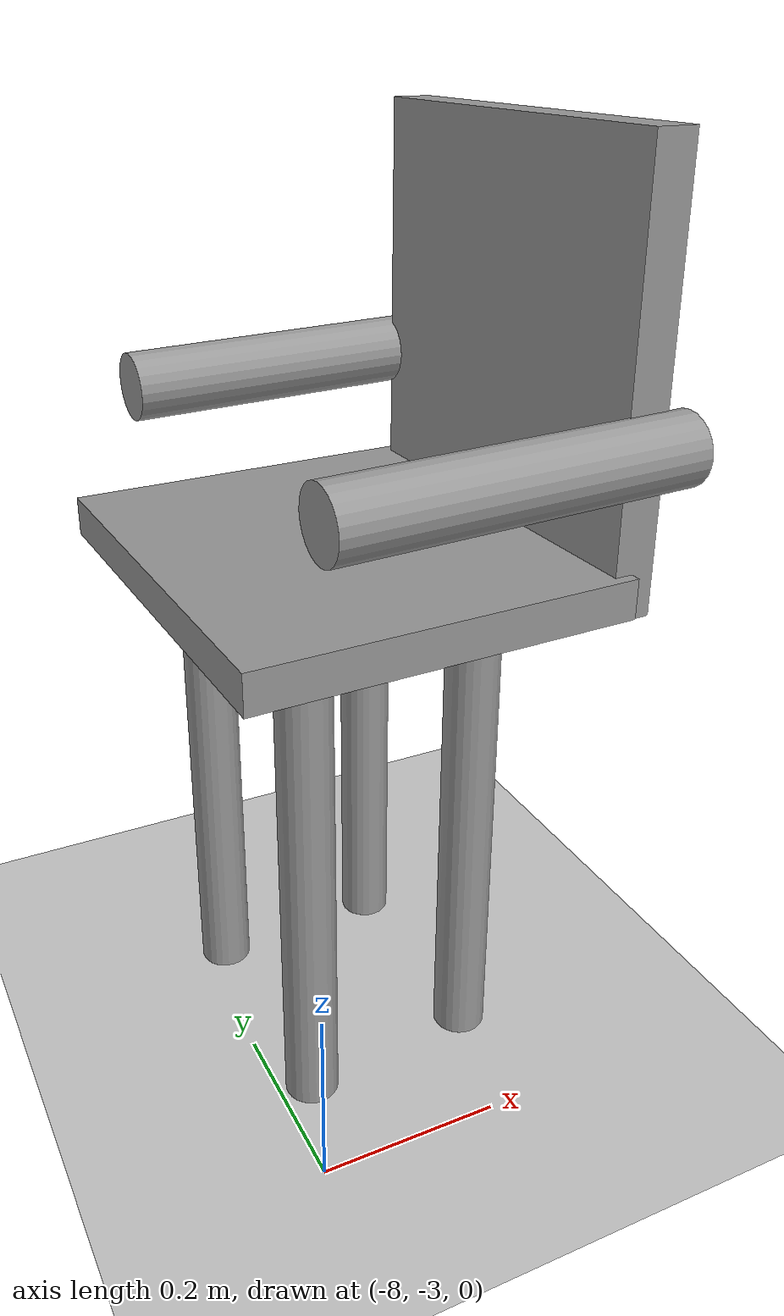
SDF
<sdf version="1.6">
 <world name="default">
  <model name="ground_plane">
   <static>1</static>
   <link name="link">
    <collision name="collision">
     <geometry><plane><normal>0 0 1</normal><size>100 100</size></plane></geometry>
     <surface>
      <contact><collide_bitmask>65535</collide_bitmask></contact>
      <friction><ode><mu>100</mu><mu2>50</mu2></ode></friction>
     </surface>
    </collision>
    <visual name="visual">
     <cast_shadows>0</cast_shadows>
     <geometry><plane><normal>0 0 1</normal><size>100 100</size></plane></geometry>
     <material>
      <script><uri>file://media/materials/scripts/gazebo.material</uri><name>Gazebo/Grey</name></script>
     </material>
    </visual>
   </link>
  </model>
  <model name="chair_clone_1_clone_0">
   <link name="link_4">
    <inertial>
     <mass>0.00194051</mass>
     <inertia>
      <ixx>5.14044e-05</ixx>
      <ixy>0</ixy>
      <ixz>0</ixz>
      <iyy>5.14044e-05</iyy>
      <iyz>0</iyz>
      <izz>8.34973e-07</izz>
     </inertia>
    </inertial>
    <pose>-0.140129 -0.127166 -0.209129 0 -0 0</pose>
    <visual name="visual">
     <geometry><cylinder><radius>0.0293355</radius><length>0.561516</length></cylinder></geometry>
     <material>
      <lighting>1</lighting>
      <script><uri>file://media/materials/scripts/gazebo.material</uri><name>Gazebo/Grey</name></script>
      <emissive>0 0 0 1</emissive>
     </material>
    </visual>
    <collision name="collision">
     <geometry><cylinder><radius>0.029336</radius><length>0.561516</length></cylinder></geometry>
     <surface>
      <friction>
       <ode><mu>1</mu><mu2>1</mu2><fdir1>0 0 0</fdir1><slip1>0</slip1><slip2>0</slip2></ode>
       <torsional>
        <coefficient>1</coefficient>
        <patch_radius>0</patch_radius>
        <surface_radius>0</surface_radius>
        <use_patch_radius>1</use_patch_radius>
        <ode><slip>0</slip></ode>
       </torsional>
      </friction>
      <bounce><restitution_coefficient>0</restitution_coefficient><threshold>1e+06</threshold></bounce>
      <contact>
       <collide_without_contact>0</collide_without_contact>
       <collide_without_contact_bitmask>1</collide_without_contact_bitmask>
       <collide_bitmask>1</collide_bitmask>
       <ode>
        <soft_cfm>0</soft_cfm>
        <soft_erp>0.2</soft_erp>
        <kp>1e+13</kp>
        <kd>1</kd>
        <max_vel>0.01</max_vel>
        <min_depth>0</min_depth>
       </ode>
       <bullet>
        <split_impulse>1</split_impulse>
        <split_impulse_penetration_threshold>-0.01</split_impulse_penetration_threshold>
        <soft_cfm>0</soft_cfm>
        <soft_erp>0.2</soft_erp>
        <kp>1e+13</kp>
        <kd>1</kd>
       </bullet>
      </contact>
     </surface>
    </collision>
   </link>
   <link name="link_4_clone">
    <inertial>
     <mass>0.00194051</mass>
     <inertia>
      <ixx>5.14044e-05</ixx>
      <ixy>0</ixy>
      <ixz>0</ixz>
      <iyy>5.14044e-05</iyy>
      <iyz>0</iyz>
      <izz>8.34973e-07</izz>
     </inertia>
    </inertial>
    <pose>-0.139565 0.126187 -0.209129 0 -0 0</pose>
    <visual name="visual">
     <geometry><cylinder><radius>0.0293355</radius><length>0.561516</length></cylinder></geometry>
     <material>
      <lighting>1</lighting>
      <script><uri>file://media/materials/scripts/gazebo.material</uri><name>Gazebo/Grey</name></script>
      <shader type="pixel"/>
      <emissive>0 0 0 1</emissive>
     </material>
    </visual>
    <collision name="collision">
     <geometry><cylinder><radius>0.029336</radius><length>0.561516</length></cylinder></geometry>
     <surface>
      <friction>
       <ode><mu>1</mu><mu2>1</mu2><fdir1>0 0 0</fdir1><slip1>0</slip1><slip2>0</slip2></ode>
       <torsional>
        <coefficient>1</coefficient>
        <patch_radius>0</patch_radius>
        <surface_radius>0</surface_radius>
        <use_patch_radius>1</use_patch_radius>
        <ode><slip>0</slip></ode>
       </torsional>
      </friction>
      <bounce><restitution_coefficient>0</restitution_coefficient><threshold>1e+06</threshold></bounce>
      <contact>
       <collide_without_contact>0</collide_without_contact>
       <collide_without_contact_bitmask>1</collide_without_contact_bitmask>
       <collide_bitmask>1</collide_bitmask>
       <ode>
        <soft_cfm>0</soft_cfm>
        <soft_erp>0.2</soft_erp>
        <kp>1e+13</kp>
        <kd>1</kd>
        <max_vel>0.01</max_vel>
        <min_depth>0</min_depth>
       </ode>
       <bullet>
        <split_impulse>1</split_impulse>
        <split_impulse_penetration_threshold>-0.01</split_impulse_penetration_threshold>
        <soft_cfm>0</soft_cfm>
        <soft_erp>0.2</soft_erp>
        <kp>1e+13</kp>
        <kd>1</kd>
       </bullet>
      </contact>
     </surface>
    </collision>
   </link>
   <link name="link_4_clone_0">
    <inertial>
     <mass>0.00194051</mass>
     <inertia>
      <ixx>5.14044e-05</ixx>
      <ixy>0</ixy>
      <ixz>0</ixz>
      <iyy>5.14044e-05</iyy>
      <iyz>0</iyz>
      <izz>8.34973e-07</izz>
     </inertia>
    </inertial>
    <pose>0.062929 0.13105 -0.209129 0 -0 0</pose>
    <visual name="visual">
     <geometry><cylinder><radius>0.0293355</radius><length>0.561516</length></cylinder></geometry>
     <material>
      <lighting>1</lighting>
      <script><uri>file://media/materials/scripts/gazebo.material</uri><name>Gazebo/Grey</name></script>
      <shader type="pixel"/>
      <emissive>0 0 0 1</emissive>
     </material>
    </visual>
    <collision name="collision">
     <geometry><cylinder><radius>0.029336</radius><length>0.561516</length></cylinder></geometry>
     <surface>
      <friction>
       <ode><mu>1</mu><mu2>1</mu2><fdir1>0 0 0</fdir1><slip1>0</slip1><slip2>0</slip2></ode>
       <torsional>
        <coefficient>1</coefficient>
        <patch_radius>0</patch_radius>
        <surface_radius>0</surface_radius>
        <use_patch_radius>1</use_patch_radius>
        <ode><slip>0</slip></ode>
       </torsional>
      </friction>
      <bounce><restitution_coefficient>0</restitution_coefficient><threshold>1e+06</threshold></bounce>
      <contact>
       <collide_without_contact>0</collide_without_contact>
       <collide_without_contact_bitmask>1</collide_without_contact_bitmask>
       <collide_bitmask>1</collide_bitmask>
       <ode>
        <soft_cfm>0</soft_cfm>
        <soft_erp>0.2</soft_erp>
        <kp>1e+13</kp>
        <kd>1</kd>
        <max_vel>0.01</max_vel>
        <min_depth>0</min_depth>
       </ode>
       <bullet>
        <split_impulse>1</split_impulse>
        <split_impulse_penetration_threshold>-0.01</split_impulse_penetration_threshold>
        <soft_cfm>0</soft_cfm>
        <soft_erp>0.2</soft_erp>
        <kp>1e+13</kp>
        <kd>1</kd>
       </bullet>
      </contact>
     </surface>
    </collision>
   </link>
   <link name="link_4_clone_1">
    <inertial>
     <mass>0.00194051</mass>
     <inertia>
      <ixx>5.14044e-05</ixx>
      <ixy>0</ixy>
      <ixz>0</ixz>
      <iyy>5.14044e-05</iyy>
      <iyz>0</iyz>
      <izz>8.34973e-07</izz>
     </inertia>
    </inertial>
    <pose>0.061641 -0.111934 -0.209129 0 -0 0</pose>
    <visual name="visual">
     <geometry><cylinder><radius>0.0293355</radius><length>0.561516</length></cylinder></geometry>
     <material>
      <lighting>1</lighting>
      <script><uri>file://media/materials/scripts/gazebo.material</uri><name>Gazebo/Grey</name></script>
      <shader type="pixel"/>
      <emissive>0 0 0 1</emissive>
     </material>
    </visual>
    <collision name="collision">
     <geometry><cylinder><radius>0.029336</radius><length>0.561516</length></cylinder></geometry>
     <surface>
      <friction>
       <ode><mu>1</mu><mu2>1</mu2><fdir1>0 0 0</fdir1><slip1>0</slip1><slip2>0</slip2></ode>
       <torsional>
        <coefficient>1</coefficient>
        <patch_radius>0</patch_radius>
        <surface_radius>0</surface_radius>
        <use_patch_radius>1</use_patch_radius>
        <ode><slip>0</slip></ode>
       </torsional>
      </friction>
      <bounce><restitution_coefficient>0</restitution_coefficient><threshold>1e+06</threshold></bounce>
      <contact>
       <collide_without_contact>0</collide_without_contact>
       <collide_without_contact_bitmask>1</collide_without_contact_bitmask>
       <collide_bitmask>1</collide_bitmask>
       <ode>
        <soft_cfm>0</soft_cfm>
        <soft_erp>0.2</soft_erp>
        <kp>1e+13</kp>
        <kd>1</kd>
        <max_vel>0.01</max_vel>
        <min_depth>0</min_depth>
       </ode>
       <bullet>
        <split_impulse>1</split_impulse>
        <split_impulse_penetration_threshold>-0.01</split_impulse_penetration_threshold>
        <soft_cfm>0</soft_cfm>
        <soft_erp>0.2</soft_erp>
        <kp>1e+13</kp>
        <kd>1</kd>
       </bullet>
      </contact>
     </surface>
    </collision>
   </link>
   <link name="link_5">
    <inertial>
     <mass>0.00816884</mass>
     <inertia>
      <ixx>0.00015002</ixx>
      <ixy>0</ixy>
      <ixz>0</ixz>
      <iyy>0.000115328</iyy>
      <iyz>0</iyz>
      <izz>0.000262862</izz>
     </inertia>
    </inertial>
    <pose>-0.041662 -0.005028 0.089077 0 -0 0</pose>
    <visual name="visual">
     <geometry><box><size>0.409378 0.467496 0.042729</size></box></geometry>
     <material>
      <lighting>1</lighting>
      <script><uri>file://media/materials/scripts/gazebo.material</uri><name>Gazebo/Grey</name></script>
      <emissive>0 0 0 1</emissive>
     </material>
    </visual>
    <collision name="collision">
     <geometry><box><size>0.409378 0.467496 0.042729</size></box></geometry>
     <surface>
      <friction>
       <ode><mu>1</mu><mu2>1</mu2><fdir1>0 0 0</fdir1><slip1>0</slip1><slip2>0</slip2></ode>
       <torsional>
        <coefficient>1</coefficient>
        <patch_radius>0</patch_radius>
        <surface_radius>0</surface_radius>
        <use_patch_radius>1</use_patch_radius>
        <ode><slip>0</slip></ode>
       </torsional>
      </friction>
      <bounce><restitution_coefficient>0</restitution_coefficient><threshold>1e+06</threshold></bounce>
      <contact>
       <collide_without_contact>0</collide_without_contact>
       <collide_without_contact_bitmask>1</collide_without_contact_bitmask>
       <collide_bitmask>1</collide_bitmask>
       <ode>
        <soft_cfm>0</soft_cfm>
        <soft_erp>0.2</soft_erp>
        <kp>1e+13</kp>
        <kd>1</kd>
        <max_vel>0.01</max_vel>
        <min_depth>0</min_depth>
       </ode>
       <bullet>
        <split_impulse>1</split_impulse>
        <split_impulse_penetration_threshold>-0.01</split_impulse_penetration_threshold>
        <soft_cfm>0</soft_cfm>
        <soft_erp>0.2</soft_erp>
        <kp>1e+13</kp>
        <kd>1</kd>
       </bullet>
      </contact>
     </surface>
    </collision>
   </link>
   <link name="link_6">
    <inertial>
     <mass>0.00855687</mass>
     <inertia>
      <ixx>0.000285159</ixx>
      <ixy>0</ixy>
      <ixz>0</ixz>
      <iyy>0.000146983</iyy>
      <iyz>0</iyz>
      <izz>0.000140925</izz>
     </inertia>
    </inertial>
    <pose>0.165697 -0.006458 0.287866 0 -0 0</pose>
    <visual name="visual">
     <geometry><box><size>0.0439 0.442383 0.451884</size></box></geometry>
     <material>
      <lighting>1</lighting>
      <script><uri>file://media/materials/scripts/gazebo.material</uri><name>Gazebo/Grey</name></script>
      <emissive>0 0 0 1</emissive>
     </material>
    </visual>
    <collision name="collision">
     <geometry><box><size>0.0439 0.442383 0.451884</size></box></geometry>
     <surface>
      <friction>
       <ode><mu>1</mu><mu2>1</mu2><fdir1>0 0 0</fdir1><slip1>0</slip1><slip2>0</slip2></ode>
       <torsional>
        <coefficient>1</coefficient>
        <patch_radius>0</patch_radius>
        <surface_radius>0</surface_radius>
        <use_patch_radius>1</use_patch_radius>
        <ode><slip>0</slip></ode>
       </torsional>
      </friction>
      <bounce><restitution_coefficient>0</restitution_coefficient><threshold>1e+06</threshold></bounce>
      <contact>
       <collide_without_contact>0</collide_without_contact>
       <collide_without_contact_bitmask>1</collide_without_contact_bitmask>
       <collide_bitmask>1</collide_bitmask>
       <ode>
        <soft_cfm>0</soft_cfm>
        <soft_erp>0.2</soft_erp>
        <kp>1e+13</kp>
        <kd>1</kd>
        <max_vel>0.01</max_vel>
        <min_depth>0</min_depth>
       </ode>
       <bullet>
        <split_impulse>1</split_impulse>
        <split_impulse_penetration_threshold>-0.01</split_impulse_penetration_threshold>
        <soft_cfm>0</soft_cfm>
        <soft_erp>0.2</soft_erp>
        <kp>1e+13</kp>
        <kd>1</kd>
       </bullet>
      </contact>
     </surface>
    </collision>
   </link>
   <link name="link_7">
    <inertial>
     <mass>0.00209129</mass>
     <inertia>
      <ixx>2.57536e-05</ixx>
      <ixy>0</ixy>
      <ixz>0</ixz>
      <iyy>2.57536e-05</iyy>
      <iyz>0</iyz>
      <izz>1.44551e-06</izz>
     </inertia>
    </inertial>
    <pose>0.0147 0.228665 0.230372 0 1.55081 0</pose>
    <visual name="visual">
     <geometry><cylinder><radius>0.0371808</radius><length>0.378984</length></cylinder></geometry>
     <material>
      <lighting>1</lighting>
      <script><uri>file://media/materials/scripts/gazebo.material</uri><name>Gazebo/Grey</name></script>
      <emissive>0 0 0 1</emissive>
     </material>
    </visual>
    <collision name="collision">
     <geometry><cylinder><radius>0.037181</radius><length>0.378984</length></cylinder></geometry>
     <surface>
      <friction>
       <ode><mu>1</mu><mu2>1</mu2><fdir1>0 0 0</fdir1><slip1>0</slip1><slip2>0</slip2></ode>
       <torsional>
        <coefficient>1</coefficient>
        <patch_radius>0</patch_radius>
        <surface_radius>0</surface_radius>
        <use_patch_radius>1</use_patch_radius>
        <ode><slip>0</slip></ode>
       </torsional>
      </friction>
      <bounce><restitution_coefficient>0</restitution_coefficient><threshold>1e+06</threshold></bounce>
      <contact>
       <collide_without_contact>0</collide_without_contact>
       <collide_without_contact_bitmask>1</collide_without_contact_bitmask>
       <collide_bitmask>1</collide_bitmask>
       <ode>
        <soft_cfm>0</soft_cfm>
        <soft_erp>0.2</soft_erp>
        <kp>1e+13</kp>
        <kd>1</kd>
        <max_vel>0.01</max_vel>
        <min_depth>0</min_depth>
       </ode>
       <bullet>
        <split_impulse>1</split_impulse>
        <split_impulse_penetration_threshold>-0.01</split_impulse_penetration_threshold>
        <soft_cfm>0</soft_cfm>
        <soft_erp>0.2</soft_erp>
        <kp>1e+13</kp>
        <kd>1</kd>
       </bullet>
      </contact>
     </surface>
    </collision>
   </link>
   <link name="link_7_clone">
    <inertial>
     <mass>0.00209129</mass>
     <inertia>
      <ixx>2.57536e-05</ixx>
      <ixy>0</ixy>
      <ixz>0</ixz>
      <iyy>2.57536e-05</iyy>
      <iyz>0</iyz>
      <izz>1.44551e-06</izz>
     </inertia>
    </inertial>
    <pose>0.01639 -0.235319 0.229201 0 1.55081 0</pose>
    <visual name="visual">
     <geometry><cylinder><radius>0.0371808</radius><length>0.378984</length></cylinder></geometry>
     <material>
      <lighting>1</lighting>
      <script><uri>file://media/materials/scripts/gazebo.material</uri><name>Gazebo/Grey</name></script>
      <shader type="pixel"/>
      <emissive>0 0 0 1</emissive>
     </material>
    </visual>
    <collision name="collision">
     <geometry><cylinder><radius>0.037181</radius><length>0.378984</length></cylinder></geometry>
     <surface>
      <friction>
       <ode><mu>1</mu><mu2>1</mu2><fdir1>0 0 0</fdir1><slip1>0</slip1><slip2>0</slip2></ode>
       <torsional>
        <coefficient>1</coefficient>
        <patch_radius>0</patch_radius>
        <surface_radius>0</surface_radius>
        <use_patch_radius>1</use_patch_radius>
        <ode><slip>0</slip></ode>
       </torsional>
      </friction>
      <bounce><restitution_coefficient>0</restitution_coefficient><threshold>1e+06</threshold></bounce>
      <contact>
       <collide_without_contact>0</collide_without_contact>
       <collide_without_contact_bitmask>1</collide_without_contact_bitmask>
       <collide_bitmask>1</collide_bitmask>
       <ode>
        <soft_cfm>0</soft_cfm>
        <soft_erp>0.2</soft_erp>
        <kp>1e+13</kp>
        <kd>1</kd>
        <max_vel>0.01</max_vel>
        <min_depth>0</min_depth>
       </ode>
       <bullet>
        <split_impulse>1</split_impulse>
        <split_impulse_penetration_threshold>-0.01</split_impulse_penetration_threshold>
        <soft_cfm>0</soft_cfm>
        <soft_erp>0.2</soft_erp>
        <kp>1e+13</kp>
        <kd>1</kd>
       </bullet>
      </contact>
     </surface>
    </collision>
   </link>
   <joint name="link_5_JOINT_2" type="fixed">
    <parent>link_5</parent>
    <child>link_4_clone_1</child>
    <physics>
     <ode><limit><cfm>0</cfm><erp>0.2</erp></limit><suspension><cfm>0</cfm><erp>0.2</erp></suspension></ode>
    </physics>
   </joint>
   <joint name="link_5_JOINT_3" type="fixed">
    <parent>link_5</parent>
    <child>link_4</child>
    <physics>
     <ode><limit><cfm>0</cfm><erp>0.2</erp></limit><suspension><cfm>0</cfm><erp>0.2</erp></suspension></ode>
    </physics>
   </joint>
   <joint name="link_5_JOINT_4" type="fixed">
    <parent>link_5</parent>
    <child>link_4_clone_0</child>
    <physics>
     <ode><limit><cfm>0</cfm><erp>0.2</erp></limit><suspension><cfm>0</cfm><erp>0.2</erp></suspension></ode>
    </physics>
   </joint>
   <joint name="link_5_JOINT_5" type="fixed">
    <parent>link_5</parent>
    <child>link_4_clone</child>
    <physics>
     <ode><limit><cfm>0</cfm><erp>0.2</erp></limit><suspension><cfm>0</cfm><erp>0.2</erp></suspension></ode>
    </physics>
   </joint>
   <joint name="link_5_JOINT_6" type="fixed">
    <parent>link_5</parent>
    <child>link_6</child>
    <physics>
     <ode><limit><cfm>0</cfm><erp>0.2</erp></limit><suspension><cfm>0</cfm><erp>0.2</erp></suspension></ode>
    </physics>
   </joint>
   <joint name="link_5_JOINT_7" type="fixed">
    <parent>link_5</parent>
    <child>link_7</child>
    <physics>
     <ode><limit><cfm>0</cfm><erp>0.2</erp></limit><suspension><cfm>0</cfm><erp>0.2</erp></suspension></ode>
    </physics>
   </joint>
   <joint name="link_5_JOINT_8" type="fixed">
    <parent>link_5</parent>
    <child>link_7_clone</child>
    <physics>
     <ode><limit><cfm>0</cfm><erp>0.2</erp></limit><suspension><cfm>0</cfm><erp>0.2</erp></suspension></ode>
    </physics>
   </joint>
   <static>0</static>
   <pose>-7.82757 -2.75094 0.489878 0 3.3e-05 0.034574</pose>
  </model>
 </world>
</sdf>
